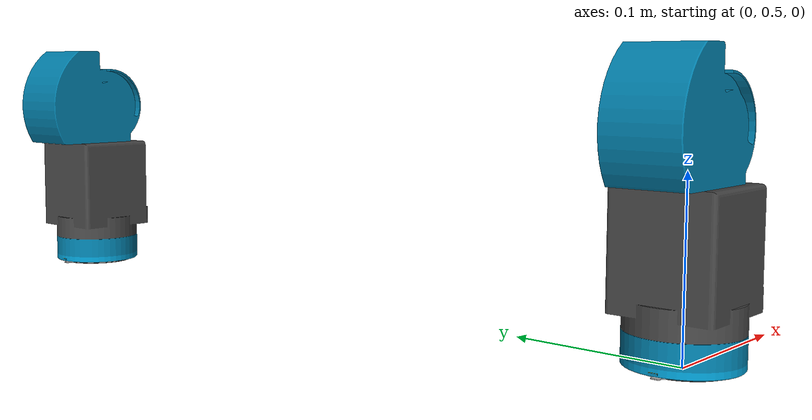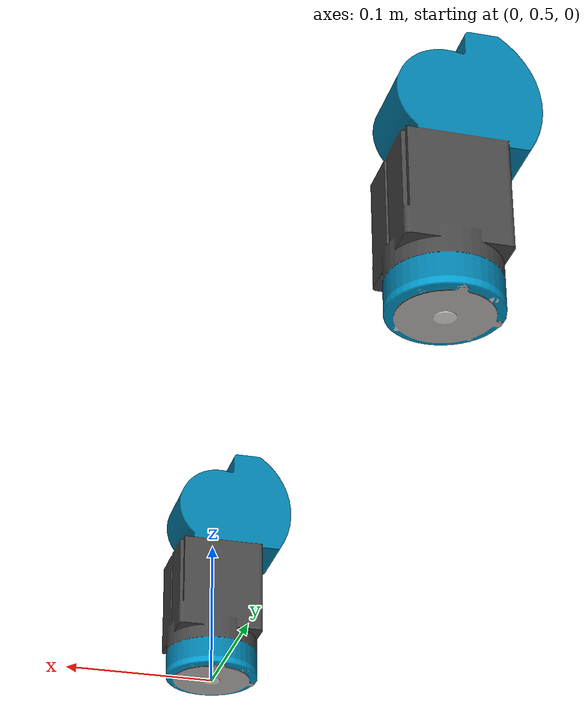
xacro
<?xml version="1.0"?>
<robot name="SEED-HA" xmlns:xacro="http://ros.org/wiki/xacro">

  <!-- The following included files set up definitions of parts of the robot body -->
  <!-- wraps upperbody and hand-->
  <xacro:include filename="$(find seed_r7_description)/urdf/HA/ha1.urdf.xacro" />

 <!-- Now we can start using the macros included above to define the actual robot -->
 <xacro:ha1 base_link="base_link"/>

</robot>

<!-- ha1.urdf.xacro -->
<!-- XML namespaces -->
<robot name="ha1" xmlns:xacro="http://ros.org/wiki/xacro">

  <xacro:macro name="ha1" params="base_link disable_mesh:=false">
  <!-- ============================   HA1  ============================ -->
  <link name="${base_link}"/>

  <link name="ha1_1_link">
    <xacro:unless value="${disable_mesh}">
    <visual>
      <origin xyz="0 0 0" rpy="0 0 0"/>
      <geometry>
        <mesh filename="package://seed_r7_description/meshes/typeG_arm/shoulder_link.dae" scale="1 1 1" />
      </geometry>
    </visual> </xacro:unless>
    <xacro:unless value="${disable_mesh}">
    <collision>
      <origin xyz="0 0 0" rpy="0 0 0"/>
      <geometry>
        <mesh filename="package://seed_r7_description/meshes/typeG_arm/shoulder_link.dae" scale="1 1 1" />
      </geometry>
    </collision> </xacro:unless>
    <inertial>
      <mass value="0.820" />
      <origin xyz="-0.001 0 0.005" rpy="0 0 0"/>
      <inertia ixx="-0.00348" ixy="0" ixz="0" iyy="0.00199" iyz="0" izz="0.00545"/>
    </inertial>
  </link>

  <link name="ha1_2_link">
   <xacro:unless value="${disable_mesh}">
   <visual>
      <origin xyz="0 0 0" rpy="0 0 0"/>
      <geometry>
        <mesh filename="package://seed_r7_description/meshes/typeG_arm/shoulder_link.dae" scale="1 1 1" />
      </geometry>
    </visual> </xacro:unless>
    <xacro:unless value="${disable_mesh}">
    <collision>
      <origin xyz="0 0 0" rpy="0 0 0"/>
      <geometry>
        <mesh filename="package://seed_r7_description/meshes/typeG_arm/shoulder_link.dae" scale="1 1 1" />
      </geometry>
    </collision> </xacro:unless>
    <inertial>
      <mass value="0.820" />
      <origin xyz="-0.001 0 0.005" rpy="0 0 0"/>
      <inertia ixx="-0.00348" ixy="0" ixz="0" iyy="0.00199" iyz="0" izz="0.00545"/>
    </inertial>
  </link>

  <!-- eef link sample -->
  <link name="ha_link"/>

  <joint name="ha1_1_joint" type="revolute">
    <parent link="${base_link}"/>
    <child  link="ha1_1_link"/>
    <origin xyz="0 0.5 0" rpy="0 0 0 "/>
    <axis   xyz="0 0 1"/>-->
    <!-- from -180 to 180 degrees-->
    <limit lower="-3.14" upper="3.14" effort="100" velocity="1.2" />
    <dynamics damping="0.2" friction="0" />
  </joint>

  <joint name="ha1_2_joint" type="revolute">
    <parent link="${base_link}"/>
    <child  link="ha1_2_link"/>
    <origin xyz="0 1 0" rpy="0 0 0 "/>
    <axis   xyz="0 0 1"/>-->
    <!-- from -180 to 180 degrees-->
    <limit lower="-3.14" upper="3.14" effort="100" velocity="1.2" />
    <dynamics damping="0.2" friction="0" />
  </joint>

  <joint name="ha_eef_joint" type="revolute">
    <parent link="${base_link}"/>
    <child  link="ha_link"/>
    <origin xyz="0 -1 0" rpy="0 0 0 "/>
    <axis   xyz="0 0 1"/>-->
    <!-- from -180 to 180 degrees-->
    <limit lower="-3.14" upper="3.14" effort="100" velocity="1.2" />
    <dynamics damping="0.2" friction="0" />
  </joint>

  </xacro:macro>

</robot>
